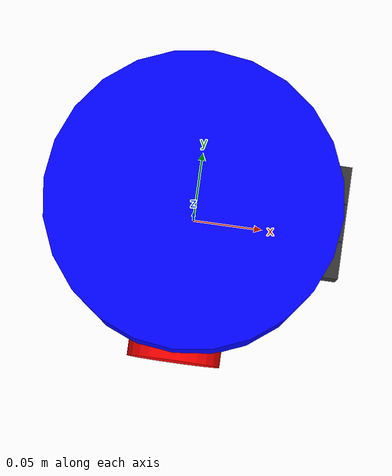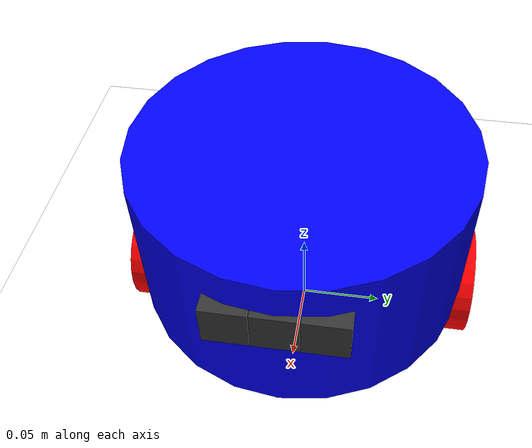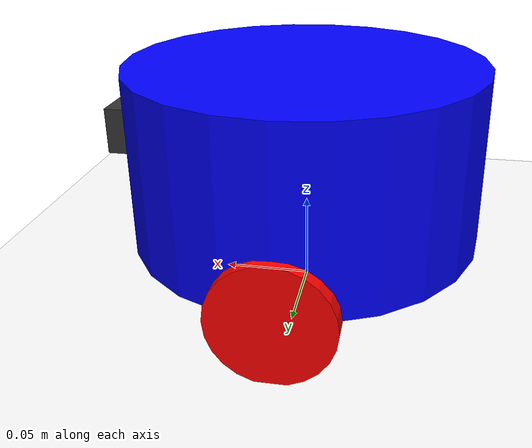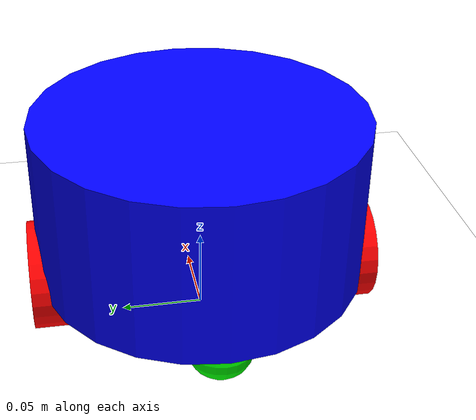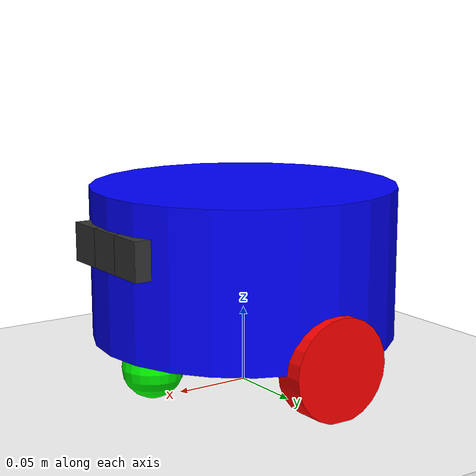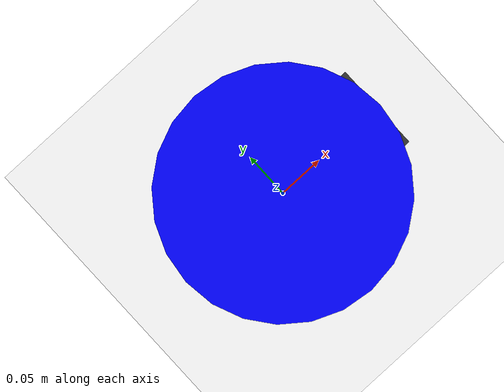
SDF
<?xml version="1.0" ?>
<sdf version="1.9">
    <world name="tinynav_world">
        <physics name="1ms" type="ignored">
            <max_step_size>0.001</max_step_size>
            <real_time_factor>1</real_time_factor>
        </physics>
        <plugin
            filename="gz-sim-physics-system"
            name="gz::sim::systems::Physics">
        </plugin>
        <plugin
            filename="gz-sim-user-commands-system"
            name="gz::sim::systems::UserCommands">
        </plugin>
        <plugin
            filename="gz-sim-scene-broadcaster-system"
            name="gz::sim::systems::SceneBroadcaster">
        </plugin>
        <plugin filename="gz-sim-imu-system"
            name="gz::sim::systems::Imu">
        </plugin>

        <plugin
            filename="gz-sim-sensors-system"
            name="gz::sim::systems::Sensors">
            <render_engine>ogre2</render_engine>
        </plugin>

        <scene>
            <ambient>1 1 1 1</ambient>
            <background>0.3 0.7 0.9 1</background>
            <shadows>0</shadows>
            <grid>1</grid>
        </scene>

        <!-- Key + fill lights; pure-ambient lighting leaves the mono infra
             cameras almost black (L8 pipeline gets little energy). -->
        <light name='sun' type='directional'>
            <cast_shadows>0</cast_shadows>
            <pose>0 0 10 0 0 0</pose>
            <diffuse>1.0 1.0 1.0 1</diffuse>
            <specular>0.1 0.1 0.1 1</specular>
            <attenuation>
                <range>1000</range>
                <constant>1.0</constant>
                <linear>0.0</linear>
                <quadratic>0.0</quadratic>
            </attenuation>
            <direction>-0.3 0.3 -0.85</direction>
        </light>
        <light name='fill' type='directional'>
            <cast_shadows>0</cast_shadows>
            <pose>0 0 10 0 0 0</pose>
            <diffuse>0.7 0.7 0.7 1</diffuse>
            <specular>0.1 0.1 0.1 1</specular>
            <attenuation>
                <range>1000</range>
                <constant>1.0</constant>
                <linear>0.0</linear>
                <quadratic>0.0</quadratic>
            </attenuation>
            <direction>0.3 -0.3 -0.85</direction>
        </light>

        <model name='ground_plane'>
            <static>1</static>
            <link name='link'>
                <collision name='collision'>
                    <geometry>
                        <plane>
                            <normal>0 0 1</normal>
                            <size>1 1</size>
                        </plane>
                    </geometry>
                    <surface>
                        <friction>
                            <ode/>
                        </friction>
                        <bounce/>
                        <contact/>
                    </surface>
                </collision>
                <!-- Visual floor: depot FLOOR albedo stretched over 40m (~4cm/px)
                     so stereo SLAM still finds texture on the ground. -->
                <visual name='floor_visual'>
                    <pose>0 0 -0.011 0 0 0</pose>
                    <geometry>
                        <box>
                            <size>40 40 0.02</size>
                        </box>
                    </geometry>
                    <material>
                        <diffuse>1 1 1 1</diffuse>
                        <specular>0.05 0.05 0.05 1</specular>
                        <pbr>
                            <metal>
                                <albedo_map>file:///tinynav/tool/simulator/gazebo_scene/models/textures/FLOOR_Albedo.png</albedo_map>
                                <roughness>0.95</roughness>
                                <metalness>0.0</metalness>
                            </metal>
                        </pbr>
                    </material>
                </visual>
            </link>
            <pose>0 0 0.002 0 0 0</pose>
        </model>

        <!-- Robot Model: LeKiwi-like cylindrical base.
             Dims from SIGRobotics-UIUC/LeKiwi URDF: wheel r=0.033, track 0.19,
             base ~0.2m. Stereo baseline stays 0.051 (matches camera_info). -->
        <model name='lekiwi' canonical_link='chassis'>
            <plugin
                filename="gz-sim-diff-drive-system"
                name="gz::sim::systems::DiffDrive">
                <left_joint>left_wheel_joint</left_joint>
                <right_joint>right_wheel_joint</right_joint>
                <wheel_separation>0.19</wheel_separation>
                <wheel_radius>0.033</wheel_radius>
                <odom_publish_frequency>20</odom_publish_frequency>
                <topic>cmd_vel</topic>
            </plugin>

            <pose relative_to='world'>0 0 0 0 0 0</pose>
            <link name='chassis'>
                <pose relative_to='__model__'>0 0 0.083 0 0 0</pose>
                <sensor name="imu_sensor" type="imu">
                    <always_on>1</always_on>
                    <update_rate>200</update_rate>
                    <visualize>true</visualize>
                    <topic>/camera/camera/imu</topic>
                    <pose>0.05 0 0.02 1.5708 3.14159 1.5708</pose>
                </sensor>
                <inertial>
                    <mass>1.0</mass>
                    <inertia>
                        <ixx>0.0033</ixx>
                        <ixy>0</ixy>
                        <ixz>0</ixz>
                        <iyy>0.0033</iyy>
                        <iyz>0</iyz>
                        <izz>0.005</izz>
                    </inertia>
                </inertial>
                <visual name='visual'>
                    <geometry>
                        <cylinder>
                            <radius>0.1</radius>
                            <length>0.1</length>
                        </cylinder>
                    </geometry>
                    <material>
                        <ambient>0.0 0.0 1.0 1</ambient>
                        <diffuse>0.0 0.0 1.0 1</diffuse>
                        <specular>0.0 0.0 1.0 1</specular>
                    </material>
                </visual>
                <collision name='collision'>
                    <geometry>
                        <cylinder>
                            <radius>0.1</radius>
                            <length>0.1</length>
                        </cylinder>
                    </geometry>
                </collision>
            </link>

            <!-- Infra1 Camera Link (Left), world height ~0.10m -->
            <link name='infra1_link'>
                <pose relative_to="chassis">0.09 0.0255 0.017 0 0 0</pose>
                <inertial>
                    <mass>0.03</mass>
                    <inertia>
                        <ixx>1e-5</ixx>
                        <ixy>0</ixy>
                        <ixz>0</ixz>
                        <iyy>1e-5</iyy>
                        <iyz>0</iyz>
                        <izz>1e-5</izz>
                    </inertia>
                </inertial>
                <visual name='visual'>
                    <geometry>
                        <box>
                            <size>0.025 0.025 0.025</size>
                        </box>
                    </geometry>
                    <material>
                        <ambient>0.2 0.2 0.2 1</ambient>
                        <diffuse>0.2 0.2 0.2 1</diffuse>
                        <specular>0.2 0.2 0.2 1</specular>
                    </material>
                </visual>
                <collision name='collision'>
                    <geometry>
                        <box>
                            <size>0.025 0.025 0.025</size>
                        </box>
                    </geometry>
                </collision>
                <sensor name="infra1" type="camera">
                    <camera>
                        <horizontal_fov>1.5708</horizontal_fov>
                        <image>
                            <width>544</width>
                            <height>480</height>
                            <format>L8</format>
                        </image>
                        <clip>
                            <near>0.1</near>
                            <far>100</far>
                        </clip>
                    </camera>
                    <always_on>1</always_on>
                    <update_rate>15</update_rate>
                    <visualize>true</visualize>
                    <topic>/camera/camera/infra1/image_rect_raw</topic>
                </sensor>
            </link>

            <!-- Infra2 Camera Link (Right) -->
            <link name='infra2_link'>
                <pose relative_to="chassis">0.09 -0.0255 0.017 0 0 0</pose>
                <inertial>
                    <mass>0.03</mass>
                    <inertia>
                        <ixx>1e-5</ixx>
                        <ixy>0</ixy>
                        <ixz>0</ixz>
                        <iyy>1e-5</iyy>
                        <iyz>0</iyz>
                        <izz>1e-5</izz>
                    </inertia>
                </inertial>
                <visual name='visual'>
                    <geometry>
                        <box>
                            <size>0.025 0.025 0.025</size>
                        </box>
                    </geometry>
                    <material>
                        <ambient>0.2 0.2 0.2 1</ambient>
                        <diffuse>0.2 0.2 0.2 1</diffuse>
                        <specular>0.2 0.2 0.2 1</specular>
                    </material>
                </visual>
                <collision name='collision'>
                    <geometry>
                        <box>
                            <size>0.025 0.025 0.025</size>
                        </box>
                    </geometry>
                </collision>
                <sensor name="infra2" type="camera">
                    <camera>
                        <horizontal_fov>1.5708</horizontal_fov>
                        <image>
                            <width>544</width>
                            <height>480</height>
                            <format>L8</format>
                        </image>
                        <clip>
                            <near>0.1</near>
                            <far>100</far>
                        </clip>
                    </camera>
                    <always_on>1</always_on>
                    <update_rate>15</update_rate>
                    <visualize>true</visualize>
                    <topic>/camera/camera/infra2/image_rect_raw</topic>
                </sensor>
            </link>

            <!-- Color Camera Link (RGB), centered between the IR pair.
                 Same intrinsics as the IR cameras so camera_info K applies verbatim. -->
            <link name='color_link'>
                <pose relative_to="chassis">0.09 0 0.017 0 0 0</pose>
                <inertial>
                    <mass>0.03</mass>
                    <inertia>
                        <ixx>1e-5</ixx>
                        <ixy>0</ixy>
                        <ixz>0</ixz>
                        <iyy>1e-5</iyy>
                        <iyz>0</iyz>
                        <izz>1e-5</izz>
                    </inertia>
                </inertial>
                <visual name='visual'>
                    <geometry>
                        <box>
                            <size>0.025 0.025 0.025</size>
                        </box>
                    </geometry>
                    <material>
                        <ambient>0.2 0.2 0.2 1</ambient>
                        <diffuse>0.2 0.2 0.2 1</diffuse>
                        <specular>0.2 0.2 0.2 1</specular>
                    </material>
                </visual>
                <collision name='collision'>
                    <geometry>
                        <box>
                            <size>0.025 0.025 0.025</size>
                        </box>
                    </geometry>
                </collision>
                <sensor name="color" type="camera">
                    <camera>
                        <horizontal_fov>1.5708</horizontal_fov>
                        <image>
                            <width>544</width>
                            <height>480</height>
                            <format>RGB_INT8</format>
                        </image>
                        <clip>
                            <near>0.1</near>
                            <far>100</far>
                        </clip>
                    </camera>
                    <always_on>1</always_on>
                    <update_rate>15</update_rate>
                    <visualize>true</visualize>
                    <topic>/camera/camera/color/image_raw</topic>
                </sensor>
            </link>

            <link name='left_wheel'>
                <pose relative_to="chassis">0 0.095 -0.05 -1.5707 0 0</pose>
                <inertial>
                    <mass>0.05</mass>
                    <inertia>
                        <ixx>1.5e-5</ixx>
                        <ixy>0</ixy>
                        <ixz>0</ixz>
                        <iyy>1.5e-5</iyy>
                        <iyz>0</iyz>
                        <izz>2.7e-5</izz>
                    </inertia>
                </inertial>
                <visual name='visual'>
                    <geometry>
                        <cylinder>
                            <radius>0.033</radius>
                            <length>0.02</length>
                        </cylinder>
                    </geometry>
                    <material>
                        <ambient>1.0 0.0 0.0 1</ambient>
                        <diffuse>1.0 0.0 0.0 1</diffuse>
                        <specular>1.0 0.0 0.0 1</specular>
                    </material>
                </visual>
                <collision name='collision'>
                    <geometry>
                        <cylinder>
                            <radius>0.033</radius>
                            <length>0.02</length>
                        </cylinder>
                    </geometry>
                </collision>
            </link>

            <link name='right_wheel'>
                <pose relative_to="chassis">0 -0.095 -0.05 -1.5707 0 0</pose>
                <inertial>
                    <mass>0.05</mass>
                    <inertia>
                        <ixx>1.5e-5</ixx>
                        <ixy>0</ixy>
                        <ixz>0</ixz>
                        <iyy>1.5e-5</iyy>
                        <iyz>0</iyz>
                        <izz>2.7e-5</izz>
                    </inertia>
                </inertial>
                <visual name='visual'>
                    <geometry>
                        <cylinder>
                            <radius>0.033</radius>
                            <length>0.02</length>
                        </cylinder>
                    </geometry>
                    <material>
                        <ambient>1.0 0.0 0.0 1</ambient>
                        <diffuse>1.0 0.0 0.0 1</diffuse>
                        <specular>1.0 0.0 0.0 1</specular>
                    </material>
                </visual>
                <collision name='collision'>
                    <geometry>
                        <cylinder>
                            <radius>0.033</radius>
                            <length>0.02</length>
                        </cylinder>
                    </geometry>
                </collision>
            </link>

            <joint name='left_wheel_joint' type='revolute'>
                <parent>chassis</parent>
                <child>left_wheel</child>
                <axis>
                    <xyz>0 0 1</xyz>
                </axis>
            </joint>

            <joint name='right_wheel_joint' type='revolute'>
                <parent>chassis</parent>
                <child>right_wheel</child>
                <axis>
                    <xyz>0 0 1</xyz>
                </axis>
            </joint>

            <frame name="caster_frame" attached_to='chassis'>
                <pose>-0.07 0 -0.062 0 0 0</pose>
            </frame>
            <link name='caster'>
                <pose relative_to='caster_frame'/>
                <inertial>
                    <mass>0.05</mass>
                    <inertia>
                        <ixx>8e-6</ixx>
                        <ixy>0</ixy>
                        <ixz>0</ixz>
                        <iyy>8e-6</iyy>
                        <iyz>0</iyz>
                        <izz>8e-6</izz>
                    </inertia>
                </inertial>
                <visual name='visual'>
                    <geometry>
                        <sphere>
                            <radius>0.02</radius>
                        </sphere>
                    </geometry>
                    <material>
                        <ambient>0.0 1 0.0 1</ambient>
                        <diffuse>0.0 1 0.0 1</diffuse>
                        <specular>0.0 1 0.0 1</specular>
                    </material>
                </visual>
                <collision name='collision'>
                    <geometry>
                        <sphere>
                            <radius>0.02</radius>
                        </sphere>
                    </geometry>
                </collision>
            </link>

            <joint name='caster_wheel' type='ball'>
                <parent>chassis</parent>
                <child>caster</child>
            </joint>

            <!-- Front ball caster: balances the forward camera weight so the
                 chassis stays level on the two drive wheels. -->
            <frame name="front_caster_frame" attached_to='chassis'>
                <pose>0.07 0 -0.062 0 0 0</pose>
            </frame>
            <link name='front_caster'>
                <pose relative_to='front_caster_frame'/>
                <inertial>
                    <mass>0.05</mass>
                    <inertia>
                        <ixx>8e-6</ixx>
                        <ixy>0</ixy>
                        <ixz>0</ixz>
                        <iyy>8e-6</iyy>
                        <iyz>0</iyz>
                        <izz>8e-6</izz>
                    </inertia>
                </inertial>
                <visual name='visual'>
                    <geometry>
                        <sphere>
                            <radius>0.02</radius>
                        </sphere>
                    </geometry>
                    <material>
                        <ambient>0.0 1 0.0 1</ambient>
                        <diffuse>0.0 1 0.0 1</diffuse>
                        <specular>0.0 1 0.0 1</specular>
                    </material>
                </visual>
                <collision name='collision'>
                    <geometry>
                        <sphere>
                            <radius>0.02</radius>
                        </sphere>
                    </geometry>
                </collision>
            </link>

            <joint name='front_caster_wheel' type='ball'>
                <parent>chassis</parent>
                <child>front_caster</child>
            </joint>

            <joint name='infra1_joint' type='fixed'>
                <parent>chassis</parent>
                <child>infra1_link</child>
            </joint>

            <joint name='infra2_joint' type='fixed'>
                <parent>chassis</parent>
                <child>infra2_link</child>
            </joint>

            <joint name='color_joint' type='fixed'>
                <parent>chassis</parent>
                <child>color_link</child>
            </joint>
        </model>

    </world>
</sdf>
